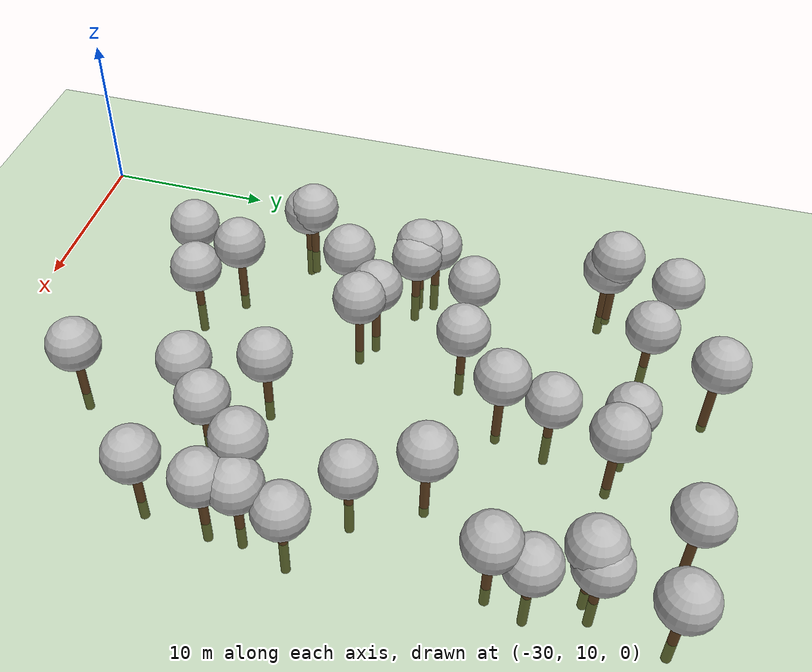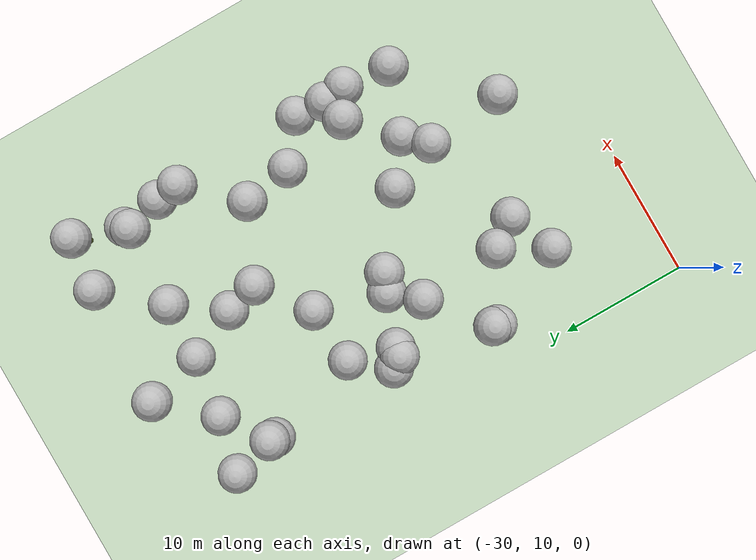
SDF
<sdf version="1.5">
 <world name="default">
  <model name="tree_simple492">
   <static>1</static>
   <link name="link">
    <pose>0 0 0.1 0 -0 0</pose>
    <collision name="collision_trunk">
     <pose>0 0 2 0 -0 0</pose>
     <geometry><cylinder><radius>0.25</radius><length>4</length></cylinder></geometry>
    </collision>
    <collision name="collision_treetop">
     <pose>0 0 5.2 0 -0 0</pose>
     <geometry><sphere><radius>1.5</radius></sphere></geometry>
    </collision>
    <visual name="trunk">
     <pose>0 0 2 0 -0 0</pose>
     <geometry><cylinder><radius>0.25</radius><length>4</length></cylinder></geometry>
     <material>
      <script>
       <uri>model://tree_simple/scripts</uri>
       <uri>model://tree_simple/materials/textures</uri>
       <name>TreeSimple/Trunk</name>
      </script>
     </material>
    </visual>
    <visual name="treetop">
     <pose>0 0 5.2 0 -0 0</pose>
     <geometry><sphere><radius>1.5</radius></sphere></geometry>
     <material>
      <script>
       <uri>model://tree_simple/scripts</uri>
       <uri>model://tree_simple/materials/textures</uri>
       <name>TreeSimple/Treetop</name>
      </script>
     </material>
    </visual>
   </link>
   <pose>-7.60604313382 27.1336498888 -0.777114410060258 0 -0 0</pose>
  </model>
  <model name="tree_simple483">
   <static>1</static>
   <link name="link">
    <pose>0 0 0.1 0 -0 0</pose>
    <collision name="collision_trunk">
     <pose>0 0 2 0 -0 0</pose>
     <geometry><cylinder><radius>0.25</radius><length>4</length></cylinder></geometry>
    </collision>
    <collision name="collision_treetop">
     <pose>0 0 5.2 0 -0 0</pose>
     <geometry><sphere><radius>1.5</radius></sphere></geometry>
    </collision>
    <visual name="trunk">
     <pose>0 0 2 0 -0 0</pose>
     <geometry><cylinder><radius>0.25</radius><length>4</length></cylinder></geometry>
     <material>
      <script>
       <uri>model://tree_simple/scripts</uri>
       <uri>model://tree_simple/materials/textures</uri>
       <name>TreeSimple/Trunk</name>
      </script>
     </material>
    </visual>
    <visual name="treetop">
     <pose>0 0 5.2 0 -0 0</pose>
     <geometry><sphere><radius>1.5</radius></sphere></geometry>
     <material>
      <script>
       <uri>model://tree_simple/scripts</uri>
       <uri>model://tree_simple/materials/textures</uri>
       <name>TreeSimple/Treetop</name>
      </script>
     </material>
    </visual>
   </link>
   <pose>-6.65162129766 44.7613363002 -1.5673599600233408 0 -0 0</pose>
  </model>
  <model name="tree_simple479">
   <static>1</static>
   <link name="link">
    <pose>0 0 0.1 0 -0 0</pose>
    <collision name="collision_trunk">
     <pose>0 0 2 0 -0 0</pose>
     <geometry><cylinder><radius>0.25</radius><length>4</length></cylinder></geometry>
    </collision>
    <collision name="collision_treetop">
     <pose>0 0 5.2 0 -0 0</pose>
     <geometry><sphere><radius>1.5</radius></sphere></geometry>
    </collision>
    <visual name="trunk">
     <pose>0 0 2 0 -0 0</pose>
     <geometry><cylinder><radius>0.25</radius><length>4</length></cylinder></geometry>
     <material>
      <script>
       <uri>model://tree_simple/scripts</uri>
       <uri>model://tree_simple/materials/textures</uri>
       <name>TreeSimple/Trunk</name>
      </script>
     </material>
    </visual>
    <visual name="treetop">
     <pose>0 0 5.2 0 -0 0</pose>
     <geometry><sphere><radius>1.5</radius></sphere></geometry>
     <material>
      <script>
       <uri>model://tree_simple/scripts</uri>
       <uri>model://tree_simple/materials/textures</uri>
       <name>TreeSimple/Treetop</name>
      </script>
     </material>
    </visual>
   </link>
   <pose>-12.2778199556 22.3020251283 -1.5209438534683652 0 -0 0</pose>
  </model>
  <model name="tree_simple466">
   <static>1</static>
   <link name="link">
    <pose>0 0 0.1 0 -0 0</pose>
    <collision name="collision_trunk">
     <pose>0 0 2 0 -0 0</pose>
     <geometry><cylinder><radius>0.25</radius><length>4</length></cylinder></geometry>
    </collision>
    <collision name="collision_treetop">
     <pose>0 0 5.2 0 -0 0</pose>
     <geometry><sphere><radius>1.5</radius></sphere></geometry>
    </collision>
    <visual name="trunk">
     <pose>0 0 2 0 -0 0</pose>
     <geometry><cylinder><radius>0.25</radius><length>4</length></cylinder></geometry>
     <material>
      <script>
       <uri>model://tree_simple/scripts</uri>
       <uri>model://tree_simple/materials/textures</uri>
       <name>TreeSimple/Trunk</name>
      </script>
     </material>
    </visual>
    <visual name="treetop">
     <pose>0 0 5.2 0 -0 0</pose>
     <geometry><sphere><radius>1.5</radius></sphere></geometry>
     <material>
      <script>
       <uri>model://tree_simple/scripts</uri>
       <uri>model://tree_simple/materials/textures</uri>
       <name>TreeSimple/Treetop</name>
      </script>
     </material>
    </visual>
   </link>
   <pose>-5.77986608036 22.173723886 -1.592125599168836 0 -0 0</pose>
  </model>
  <model name="tree_simple446">
   <static>1</static>
   <link name="link">
    <pose>0 0 0.1 0 -0 0</pose>
    <collision name="collision_trunk">
     <pose>0 0 2 0 -0 0</pose>
     <geometry><cylinder><radius>0.25</radius><length>4</length></cylinder></geometry>
    </collision>
    <collision name="collision_treetop">
     <pose>0 0 5.2 0 -0 0</pose>
     <geometry><sphere><radius>1.5</radius></sphere></geometry>
    </collision>
    <visual name="trunk">
     <pose>0 0 2 0 -0 0</pose>
     <geometry><cylinder><radius>0.25</radius><length>4</length></cylinder></geometry>
     <material>
      <script>
       <uri>model://tree_simple/scripts</uri>
       <uri>model://tree_simple/materials/textures</uri>
       <name>TreeSimple/Trunk</name>
      </script>
     </material>
    </visual>
    <visual name="treetop">
     <pose>0 0 5.2 0 -0 0</pose>
     <geometry><sphere><radius>1.5</radius></sphere></geometry>
     <material>
      <script>
       <uri>model://tree_simple/scripts</uri>
       <uri>model://tree_simple/materials/textures</uri>
       <name>TreeSimple/Treetop</name>
      </script>
     </material>
    </visual>
   </link>
   <pose>-14.8873591434 38.8088683427 -0.8229034105577706 0 -0 0</pose>
  </model>
  <model name="tree_simple441">
   <static>1</static>
   <link name="link">
    <pose>0 0 0.1 0 -0 0</pose>
    <collision name="collision_trunk">
     <pose>0 0 2 0 -0 0</pose>
     <geometry><cylinder><radius>0.25</radius><length>4</length></cylinder></geometry>
    </collision>
    <collision name="collision_treetop">
     <pose>0 0 5.2 0 -0 0</pose>
     <geometry><sphere><radius>1.5</radius></sphere></geometry>
    </collision>
    <visual name="trunk">
     <pose>0 0 2 0 -0 0</pose>
     <geometry><cylinder><radius>0.25</radius><length>4</length></cylinder></geometry>
     <material>
      <script>
       <uri>model://tree_simple/scripts</uri>
       <uri>model://tree_simple/materials/textures</uri>
       <name>TreeSimple/Trunk</name>
      </script>
     </material>
    </visual>
    <visual name="treetop">
     <pose>0 0 5.2 0 -0 0</pose>
     <geometry><sphere><radius>1.5</radius></sphere></geometry>
     <material>
      <script>
       <uri>model://tree_simple/scripts</uri>
       <uri>model://tree_simple/materials/textures</uri>
       <name>TreeSimple/Treetop</name>
      </script>
     </material>
    </visual>
   </link>
   <pose>-25.4258718868 33.0017159702 -2.269556547559087 0 -0 0</pose>
  </model>
  <model name="tree_simple436">
   <static>1</static>
   <link name="link">
    <pose>0 0 0.1 0 -0 0</pose>
    <collision name="collision_trunk">
     <pose>0 0 2 0 -0 0</pose>
     <geometry><cylinder><radius>0.25</radius><length>4</length></cylinder></geometry>
    </collision>
    <collision name="collision_treetop">
     <pose>0 0 5.2 0 -0 0</pose>
     <geometry><sphere><radius>1.5</radius></sphere></geometry>
    </collision>
    <visual name="trunk">
     <pose>0 0 2 0 -0 0</pose>
     <geometry><cylinder><radius>0.25</radius><length>4</length></cylinder></geometry>
     <material>
      <script>
       <uri>model://tree_simple/scripts</uri>
       <uri>model://tree_simple/materials/textures</uri>
       <name>TreeSimple/Trunk</name>
      </script>
     </material>
    </visual>
    <visual name="treetop">
     <pose>0 0 5.2 0 -0 0</pose>
     <geometry><sphere><radius>1.5</radius></sphere></geometry>
     <material>
      <script>
       <uri>model://tree_simple/scripts</uri>
       <uri>model://tree_simple/materials/textures</uri>
       <name>TreeSimple/Treetop</name>
      </script>
     </material>
    </visual>
   </link>
   <pose>-12.9773602363 44.9895309953 -0.9451846145048766 0 -0 0</pose>
  </model>
  <model name="tree_simple425">
   <static>1</static>
   <link name="link">
    <pose>0 0 0.1 0 -0 0</pose>
    <collision name="collision_trunk">
     <pose>0 0 2 0 -0 0</pose>
     <geometry><cylinder><radius>0.25</radius><length>4</length></cylinder></geometry>
    </collision>
    <collision name="collision_treetop">
     <pose>0 0 5.2 0 -0 0</pose>
     <geometry><sphere><radius>1.5</radius></sphere></geometry>
    </collision>
    <visual name="trunk">
     <pose>0 0 2 0 -0 0</pose>
     <geometry><cylinder><radius>0.25</radius><length>4</length></cylinder></geometry>
     <material>
      <script>
       <uri>model://tree_simple/scripts</uri>
       <uri>model://tree_simple/materials/textures</uri>
       <name>TreeSimple/Trunk</name>
      </script>
     </material>
    </visual>
    <visual name="treetop">
     <pose>0 0 5.2 0 -0 0</pose>
     <geometry><sphere><radius>1.5</radius></sphere></geometry>
     <material>
      <script>
       <uri>model://tree_simple/scripts</uri>
       <uri>model://tree_simple/materials/textures</uri>
       <name>TreeSimple/Treetop</name>
      </script>
     </material>
    </visual>
   </link>
   <pose>-9.294152574 36.1907172759 -0.8964126762535747 0 -0 0</pose>
  </model>
  <model name="tree_simple409">
   <static>1</static>
   <link name="link">
    <pose>0 0 0.1 0 -0 0</pose>
    <collision name="collision_trunk">
     <pose>0 0 2 0 -0 0</pose>
     <geometry><cylinder><radius>0.25</radius><length>4</length></cylinder></geometry>
    </collision>
    <collision name="collision_treetop">
     <pose>0 0 5.2 0 -0 0</pose>
     <geometry><sphere><radius>1.5</radius></sphere></geometry>
    </collision>
    <visual name="trunk">
     <pose>0 0 2 0 -0 0</pose>
     <geometry><cylinder><radius>0.25</radius><length>4</length></cylinder></geometry>
     <material>
      <script>
       <uri>model://tree_simple/scripts</uri>
       <uri>model://tree_simple/materials/textures</uri>
       <name>TreeSimple/Trunk</name>
      </script>
     </material>
    </visual>
    <visual name="treetop">
     <pose>0 0 5.2 0 -0 0</pose>
     <geometry><sphere><radius>1.5</radius></sphere></geometry>
     <material>
      <script>
       <uri>model://tree_simple/scripts</uri>
       <uri>model://tree_simple/materials/textures</uri>
       <name>TreeSimple/Treetop</name>
      </script>
     </material>
    </visual>
   </link>
   <pose>-23.2045481925 35.7189479207 -2.498719308465116 0 -0 0</pose>
  </model>
  <model name="tree_simple398">
   <static>1</static>
   <link name="link">
    <pose>0 0 0.1 0 -0 0</pose>
    <collision name="collision_trunk">
     <pose>0 0 2 0 -0 0</pose>
     <geometry><cylinder><radius>0.25</radius><length>4</length></cylinder></geometry>
    </collision>
    <collision name="collision_treetop">
     <pose>0 0 5.2 0 -0 0</pose>
     <geometry><sphere><radius>1.5</radius></sphere></geometry>
    </collision>
    <visual name="trunk">
     <pose>0 0 2 0 -0 0</pose>
     <geometry><cylinder><radius>0.25</radius><length>4</length></cylinder></geometry>
     <material>
      <script>
       <uri>model://tree_simple/scripts</uri>
       <uri>model://tree_simple/materials/textures</uri>
       <name>TreeSimple/Trunk</name>
      </script>
     </material>
    </visual>
    <visual name="treetop">
     <pose>0 0 5.2 0 -0 0</pose>
     <geometry><sphere><radius>1.5</radius></sphere></geometry>
     <material>
      <script>
       <uri>model://tree_simple/scripts</uri>
       <uri>model://tree_simple/materials/textures</uri>
       <name>TreeSimple/Treetop</name>
      </script>
     </material>
    </visual>
   </link>
   <pose>-5.63129043723 27.5985943182 -1.882284944733629 0 -0 0</pose>
  </model>
  <model name="tree_simple359">
   <static>1</static>
   <link name="link">
    <pose>0 0 0.1 0 -0 0</pose>
    <collision name="collision_trunk">
     <pose>0 0 2 0 -0 0</pose>
     <geometry><cylinder><radius>0.25</radius><length>4</length></cylinder></geometry>
    </collision>
    <collision name="collision_treetop">
     <pose>0 0 5.2 0 -0 0</pose>
     <geometry><sphere><radius>1.5</radius></sphere></geometry>
    </collision>
    <visual name="trunk">
     <pose>0 0 2 0 -0 0</pose>
     <geometry><cylinder><radius>0.25</radius><length>4</length></cylinder></geometry>
     <material>
      <script>
       <uri>model://tree_simple/scripts</uri>
       <uri>model://tree_simple/materials/textures</uri>
       <name>TreeSimple/Trunk</name>
      </script>
     </material>
    </visual>
    <visual name="treetop">
     <pose>0 0 5.2 0 -0 0</pose>
     <geometry><sphere><radius>1.5</radius></sphere></geometry>
     <material>
      <script>
       <uri>model://tree_simple/scripts</uri>
       <uri>model://tree_simple/materials/textures</uri>
       <name>TreeSimple/Treetop</name>
      </script>
     </material>
    </visual>
   </link>
   <pose>-20.2372130322 30.6626507403 -1.4045572480643975 0 -0 0</pose>
  </model>
  <model name="tree_simple353">
   <static>1</static>
   <link name="link">
    <pose>0 0 0.1 0 -0 0</pose>
    <collision name="collision_trunk">
     <pose>0 0 2 0 -0 0</pose>
     <geometry><cylinder><radius>0.25</radius><length>4</length></cylinder></geometry>
    </collision>
    <collision name="collision_treetop">
     <pose>0 0 5.2 0 -0 0</pose>
     <geometry><sphere><radius>1.5</radius></sphere></geometry>
    </collision>
    <visual name="trunk">
     <pose>0 0 2 0 -0 0</pose>
     <geometry><cylinder><radius>0.25</radius><length>4</length></cylinder></geometry>
     <material>
      <script>
       <uri>model://tree_simple/scripts</uri>
       <uri>model://tree_simple/materials/textures</uri>
       <name>TreeSimple/Trunk</name>
      </script>
     </material>
    </visual>
    <visual name="treetop">
     <pose>0 0 5.2 0 -0 0</pose>
     <geometry><sphere><radius>1.5</radius></sphere></geometry>
     <material>
      <script>
       <uri>model://tree_simple/scripts</uri>
       <uri>model://tree_simple/materials/textures</uri>
       <name>TreeSimple/Treetop</name>
      </script>
     </material>
    </visual>
   </link>
   <pose>-8.45318639894 32.4449291469 -2.5970196484781063 0 -0 0</pose>
  </model>
  <model name="tree_simple343">
   <static>1</static>
   <link name="link">
    <pose>0 0 0.1 0 -0 0</pose>
    <collision name="collision_trunk">
     <pose>0 0 2 0 -0 0</pose>
     <geometry><cylinder><radius>0.25</radius><length>4</length></cylinder></geometry>
    </collision>
    <collision name="collision_treetop">
     <pose>0 0 5.2 0 -0 0</pose>
     <geometry><sphere><radius>1.5</radius></sphere></geometry>
    </collision>
    <visual name="trunk">
     <pose>0 0 2 0 -0 0</pose>
     <geometry><cylinder><radius>0.25</radius><length>4</length></cylinder></geometry>
     <material>
      <script>
       <uri>model://tree_simple/scripts</uri>
       <uri>model://tree_simple/materials/textures</uri>
       <name>TreeSimple/Trunk</name>
      </script>
     </material>
    </visual>
    <visual name="treetop">
     <pose>0 0 5.2 0 -0 0</pose>
     <geometry><sphere><radius>1.5</radius></sphere></geometry>
     <material>
      <script>
       <uri>model://tree_simple/scripts</uri>
       <uri>model://tree_simple/materials/textures</uri>
       <name>TreeSimple/Treetop</name>
      </script>
     </material>
    </visual>
   </link>
   <pose>-17.2958932822 45.7138384605 -3.948478030348825 0 -0 0</pose>
  </model>
  <model name="tree_simple342">
   <static>1</static>
   <link name="link">
    <pose>0 0 0.1 0 -0 0</pose>
    <collision name="collision_trunk">
     <pose>0 0 2 0 -0 0</pose>
     <geometry><cylinder><radius>0.25</radius><length>4</length></cylinder></geometry>
    </collision>
    <collision name="collision_treetop">
     <pose>0 0 5.2 0 -0 0</pose>
     <geometry><sphere><radius>1.5</radius></sphere></geometry>
    </collision>
    <visual name="trunk">
     <pose>0 0 2 0 -0 0</pose>
     <geometry><cylinder><radius>0.25</radius><length>4</length></cylinder></geometry>
     <material>
      <script>
       <uri>model://tree_simple/scripts</uri>
       <uri>model://tree_simple/materials/textures</uri>
       <name>TreeSimple/Trunk</name>
      </script>
     </material>
    </visual>
    <visual name="treetop">
     <pose>0 0 5.2 0 -0 0</pose>
     <geometry><sphere><radius>1.5</radius></sphere></geometry>
     <material>
      <script>
       <uri>model://tree_simple/scripts</uri>
       <uri>model://tree_simple/materials/textures</uri>
       <name>TreeSimple/Treetop</name>
      </script>
     </material>
    </visual>
   </link>
   <pose>-22.0369501139 46.0033918911 -2.2910733252250504 0 -0 0</pose>
  </model>
  <model name="tree_simple310">
   <static>1</static>
   <link name="link">
    <pose>0 0 0.1 0 -0 0</pose>
    <collision name="collision_trunk">
     <pose>0 0 2 0 -0 0</pose>
     <geometry><cylinder><radius>0.25</radius><length>4</length></cylinder></geometry>
    </collision>
    <collision name="collision_treetop">
     <pose>0 0 5.2 0 -0 0</pose>
     <geometry><sphere><radius>1.5</radius></sphere></geometry>
    </collision>
    <visual name="trunk">
     <pose>0 0 2 0 -0 0</pose>
     <geometry><cylinder><radius>0.25</radius><length>4</length></cylinder></geometry>
     <material>
      <script>
       <uri>model://tree_simple/scripts</uri>
       <uri>model://tree_simple/materials/textures</uri>
       <name>TreeSimple/Trunk</name>
      </script>
     </material>
    </visual>
    <visual name="treetop">
     <pose>0 0 5.2 0 -0 0</pose>
     <geometry><sphere><radius>1.5</radius></sphere></geometry>
     <material>
      <script>
       <uri>model://tree_simple/scripts</uri>
       <uri>model://tree_simple/materials/textures</uri>
       <name>TreeSimple/Treetop</name>
      </script>
     </material>
    </visual>
   </link>
   <pose>-24.1249967054 32.1060106323 -2.198553968869226 0 -0 0</pose>
  </model>
  <model name="tree_simple307">
   <static>1</static>
   <link name="link">
    <pose>0 0 0.1 0 -0 0</pose>
    <collision name="collision_trunk">
     <pose>0 0 2 0 -0 0</pose>
     <geometry><cylinder><radius>0.25</radius><length>4</length></cylinder></geometry>
    </collision>
    <collision name="collision_treetop">
     <pose>0 0 5.2 0 -0 0</pose>
     <geometry><sphere><radius>1.5</radius></sphere></geometry>
    </collision>
    <visual name="trunk">
     <pose>0 0 2 0 -0 0</pose>
     <geometry><cylinder><radius>0.25</radius><length>4</length></cylinder></geometry>
     <material>
      <script>
       <uri>model://tree_simple/scripts</uri>
       <uri>model://tree_simple/materials/textures</uri>
       <name>TreeSimple/Trunk</name>
      </script>
     </material>
    </visual>
    <visual name="treetop">
     <pose>0 0 5.2 0 -0 0</pose>
     <geometry><sphere><radius>1.5</radius></sphere></geometry>
     <material>
      <script>
       <uri>model://tree_simple/scripts</uri>
       <uri>model://tree_simple/materials/textures</uri>
       <name>TreeSimple/Treetop</name>
      </script>
     </material>
    </visual>
   </link>
   <pose>-25.3992623196 43.1282745175 -1.5799735207614776 0 -0 0</pose>
  </model>
  <model name="tree_simple271">
   <static>1</static>
   <link name="link">
    <pose>0 0 0.1 0 -0 0</pose>
    <collision name="collision_trunk">
     <pose>0 0 2 0 -0 0</pose>
     <geometry><cylinder><radius>0.25</radius><length>4</length></cylinder></geometry>
    </collision>
    <collision name="collision_treetop">
     <pose>0 0 5.2 0 -0 0</pose>
     <geometry><sphere><radius>1.5</radius></sphere></geometry>
    </collision>
    <visual name="trunk">
     <pose>0 0 2 0 -0 0</pose>
     <geometry><cylinder><radius>0.25</radius><length>4</length></cylinder></geometry>
     <material>
      <script>
       <uri>model://tree_simple/scripts</uri>
       <uri>model://tree_simple/materials/textures</uri>
       <name>TreeSimple/Trunk</name>
      </script>
     </material>
    </visual>
    <visual name="treetop">
     <pose>0 0 5.2 0 -0 0</pose>
     <geometry><sphere><radius>1.5</radius></sphere></geometry>
     <material>
      <script>
       <uri>model://tree_simple/scripts</uri>
       <uri>model://tree_simple/materials/textures</uri>
       <name>TreeSimple/Treetop</name>
      </script>
     </material>
    </visual>
   </link>
   <pose>-18.5426783436 49.4999190652 -0.6315812404913141 0 -0 0</pose>
  </model>
  <model name="tree_simple251">
   <static>1</static>
   <link name="link">
    <pose>0 0 0.1 0 -0 0</pose>
    <collision name="collision_trunk">
     <pose>0 0 2 0 -0 0</pose>
     <geometry><cylinder><radius>0.25</radius><length>4</length></cylinder></geometry>
    </collision>
    <collision name="collision_treetop">
     <pose>0 0 5.2 0 -0 0</pose>
     <geometry><sphere><radius>1.5</radius></sphere></geometry>
    </collision>
    <visual name="trunk">
     <pose>0 0 2 0 -0 0</pose>
     <geometry><cylinder><radius>0.25</radius><length>4</length></cylinder></geometry>
     <material>
      <script>
       <uri>model://tree_simple/scripts</uri>
       <uri>model://tree_simple/materials/textures</uri>
       <name>TreeSimple/Trunk</name>
      </script>
     </material>
    </visual>
    <visual name="treetop">
     <pose>0 0 5.2 0 -0 0</pose>
     <geometry><sphere><radius>1.5</radius></sphere></geometry>
     <material>
      <script>
       <uri>model://tree_simple/scripts</uri>
       <uri>model://tree_simple/materials/textures</uri>
       <name>TreeSimple/Treetop</name>
      </script>
     </material>
    </visual>
   </link>
   <pose>-19.9479400909 19.7976665809 -2.383186906810059 0 -0 0</pose>
  </model>
  <model name="tree_simple248">
   <static>1</static>
   <link name="link">
    <pose>0 0 0.1 0 -0 0</pose>
    <collision name="collision_trunk">
     <pose>0 0 2 0 -0 0</pose>
     <geometry><cylinder><radius>0.25</radius><length>4</length></cylinder></geometry>
    </collision>
    <collision name="collision_treetop">
     <pose>0 0 5.2 0 -0 0</pose>
     <geometry><sphere><radius>1.5</radius></sphere></geometry>
    </collision>
    <visual name="trunk">
     <pose>0 0 2 0 -0 0</pose>
     <geometry><cylinder><radius>0.25</radius><length>4</length></cylinder></geometry>
     <material>
      <script>
       <uri>model://tree_simple/scripts</uri>
       <uri>model://tree_simple/materials/textures</uri>
       <name>TreeSimple/Trunk</name>
      </script>
     </material>
    </visual>
    <visual name="treetop">
     <pose>0 0 5.2 0 -0 0</pose>
     <geometry><sphere><radius>1.5</radius></sphere></geometry>
     <material>
      <script>
       <uri>model://tree_simple/scripts</uri>
       <uri>model://tree_simple/materials/textures</uri>
       <name>TreeSimple/Treetop</name>
      </script>
     </material>
    </visual>
   </link>
   <pose>-9.31615496508 49.2286778513 -1.1281525146404503 0 -0 0</pose>
  </model>
  <model name="tree_simple232">
   <static>1</static>
   <link name="link">
    <pose>0 0 0.1 0 -0 0</pose>
    <collision name="collision_trunk">
     <pose>0 0 2 0 -0 0</pose>
     <geometry><cylinder><radius>0.25</radius><length>4</length></cylinder></geometry>
    </collision>
    <collision name="collision_treetop">
     <pose>0 0 5.2 0 -0 0</pose>
     <geometry><sphere><radius>1.5</radius></sphere></geometry>
    </collision>
    <visual name="trunk">
     <pose>0 0 2 0 -0 0</pose>
     <geometry><cylinder><radius>0.25</radius><length>4</length></cylinder></geometry>
     <material>
      <script>
       <uri>model://tree_simple/scripts</uri>
       <uri>model://tree_simple/materials/textures</uri>
       <name>TreeSimple/Trunk</name>
      </script>
     </material>
    </visual>
    <visual name="treetop">
     <pose>0 0 5.2 0 -0 0</pose>
     <geometry><sphere><radius>1.5</radius></sphere></geometry>
     <material>
      <script>
       <uri>model://tree_simple/scripts</uri>
       <uri>model://tree_simple/materials/textures</uri>
       <name>TreeSimple/Treetop</name>
      </script>
     </material>
    </visual>
   </link>
   <pose>-11.6357803634 16.236207717 -1.4807460292759995 0 -0 0</pose>
  </model>
  <model name="tree_simple224">
   <static>1</static>
   <link name="link">
    <pose>0 0 0.1 0 -0 0</pose>
    <collision name="collision_trunk">
     <pose>0 0 2 0 -0 0</pose>
     <geometry><cylinder><radius>0.25</radius><length>4</length></cylinder></geometry>
    </collision>
    <collision name="collision_treetop">
     <pose>0 0 5.2 0 -0 0</pose>
     <geometry><sphere><radius>1.5</radius></sphere></geometry>
    </collision>
    <visual name="trunk">
     <pose>0 0 2 0 -0 0</pose>
     <geometry><cylinder><radius>0.25</radius><length>4</length></cylinder></geometry>
     <material>
      <script>
       <uri>model://tree_simple/scripts</uri>
       <uri>model://tree_simple/materials/textures</uri>
       <name>TreeSimple/Trunk</name>
      </script>
     </material>
    </visual>
    <visual name="treetop">
     <pose>0 0 5.2 0 -0 0</pose>
     <geometry><sphere><radius>1.5</radius></sphere></geometry>
     <material>
      <script>
       <uri>model://tree_simple/scripts</uri>
       <uri>model://tree_simple/materials/textures</uri>
       <name>TreeSimple/Treetop</name>
      </script>
     </material>
    </visual>
   </link>
   <pose>-25.303745436 43.465040084 -0.5768393167187675 0 -0 0</pose>
  </model>
  <model name="tree_simple213">
   <static>1</static>
   <link name="link">
    <pose>0 0 0.1 0 -0 0</pose>
    <collision name="collision_trunk">
     <pose>0 0 2 0 -0 0</pose>
     <geometry><cylinder><radius>0.25</radius><length>4</length></cylinder></geometry>
    </collision>
    <collision name="collision_treetop">
     <pose>0 0 5.2 0 -0 0</pose>
     <geometry><sphere><radius>1.5</radius></sphere></geometry>
    </collision>
    <visual name="trunk">
     <pose>0 0 2 0 -0 0</pose>
     <geometry><cylinder><radius>0.25</radius><length>4</length></cylinder></geometry>
     <material>
      <script>
       <uri>model://tree_simple/scripts</uri>
       <uri>model://tree_simple/materials/textures</uri>
       <name>TreeSimple/Trunk</name>
      </script>
     </material>
    </visual>
    <visual name="treetop">
     <pose>0 0 5.2 0 -0 0</pose>
     <geometry><sphere><radius>1.5</radius></sphere></geometry>
     <material>
      <script>
       <uri>model://tree_simple/scripts</uri>
       <uri>model://tree_simple/materials/textures</uri>
       <name>TreeSimple/Treetop</name>
      </script>
     </material>
    </visual>
   </link>
   <pose>-6.21217405129 45.1783482454 -2.253806931240573 0 -0 0</pose>
  </model>
  <model name="tree_simple186">
   <static>1</static>
   <link name="link">
    <pose>0 0 0.1 0 -0 0</pose>
    <collision name="collision_trunk">
     <pose>0 0 2 0 -0 0</pose>
     <geometry><cylinder><radius>0.25</radius><length>4</length></cylinder></geometry>
    </collision>
    <collision name="collision_treetop">
     <pose>0 0 5.2 0 -0 0</pose>
     <geometry><sphere><radius>1.5</radius></sphere></geometry>
    </collision>
    <visual name="trunk">
     <pose>0 0 2 0 -0 0</pose>
     <geometry><cylinder><radius>0.25</radius><length>4</length></cylinder></geometry>
     <material>
      <script>
       <uri>model://tree_simple/scripts</uri>
       <uri>model://tree_simple/materials/textures</uri>
       <name>TreeSimple/Trunk</name>
      </script>
     </material>
    </visual>
    <visual name="treetop">
     <pose>0 0 5.2 0 -0 0</pose>
     <geometry><sphere><radius>1.5</radius></sphere></geometry>
     <material>
      <script>
       <uri>model://tree_simple/scripts</uri>
       <uri>model://tree_simple/materials/textures</uri>
       <name>TreeSimple/Treetop</name>
      </script>
     </material>
    </visual>
   </link>
   <pose>-26.4394079644 24.666728782 -2.236990173563657 0 -0 0</pose>
  </model>
  <model name="tree_simple183">
   <static>1</static>
   <link name="link">
    <pose>0 0 0.1 0 -0 0</pose>
    <collision name="collision_trunk">
     <pose>0 0 2 0 -0 0</pose>
     <geometry><cylinder><radius>0.25</radius><length>4</length></cylinder></geometry>
    </collision>
    <collision name="collision_treetop">
     <pose>0 0 5.2 0 -0 0</pose>
     <geometry><sphere><radius>1.5</radius></sphere></geometry>
    </collision>
    <visual name="trunk">
     <pose>0 0 2 0 -0 0</pose>
     <geometry><cylinder><radius>0.25</radius><length>4</length></cylinder></geometry>
     <material>
      <script>
       <uri>model://tree_simple/scripts</uri>
       <uri>model://tree_simple/materials/textures</uri>
       <name>TreeSimple/Trunk</name>
      </script>
     </material>
    </visual>
    <visual name="treetop">
     <pose>0 0 5.2 0 -0 0</pose>
     <geometry><sphere><radius>1.5</radius></sphere></geometry>
     <material>
      <script>
       <uri>model://tree_simple/scripts</uri>
       <uri>model://tree_simple/materials/textures</uri>
       <name>TreeSimple/Treetop</name>
      </script>
     </material>
    </visual>
   </link>
   <pose>-24.8051767245 32.1734283562 -1.8307573107293464 0 -0 0</pose>
  </model>
  <model name="tree_simple174">
   <static>1</static>
   <link name="link">
    <pose>0 0 0.1 0 -0 0</pose>
    <collision name="collision_trunk">
     <pose>0 0 2 0 -0 0</pose>
     <geometry><cylinder><radius>0.25</radius><length>4</length></cylinder></geometry>
    </collision>
    <collision name="collision_treetop">
     <pose>0 0 5.2 0 -0 0</pose>
     <geometry><sphere><radius>1.5</radius></sphere></geometry>
    </collision>
    <visual name="trunk">
     <pose>0 0 2 0 -0 0</pose>
     <geometry><cylinder><radius>0.25</radius><length>4</length></cylinder></geometry>
     <material>
      <script>
       <uri>model://tree_simple/scripts</uri>
       <uri>model://tree_simple/materials/textures</uri>
       <name>TreeSimple/Trunk</name>
      </script>
     </material>
    </visual>
    <visual name="treetop">
     <pose>0 0 5.2 0 -0 0</pose>
     <geometry><sphere><radius>1.5</radius></sphere></geometry>
     <material>
      <script>
       <uri>model://tree_simple/scripts</uri>
       <uri>model://tree_simple/materials/textures</uri>
       <name>TreeSimple/Treetop</name>
      </script>
     </material>
    </visual>
   </link>
   <pose>-26.363349587 25.0273342245 -1.9137421610099605 0 -0 0</pose>
  </model>
  <model name="tree_simple161">
   <static>1</static>
   <link name="link">
    <pose>0 0 0.1 0 -0 0</pose>
    <collision name="collision_trunk">
     <pose>0 0 2 0 -0 0</pose>
     <geometry><cylinder><radius>0.25</radius><length>4</length></cylinder></geometry>
    </collision>
    <collision name="collision_treetop">
     <pose>0 0 5.2 0 -0 0</pose>
     <geometry><sphere><radius>1.5</radius></sphere></geometry>
    </collision>
    <visual name="trunk">
     <pose>0 0 2 0 -0 0</pose>
     <geometry><cylinder><radius>0.25</radius><length>4</length></cylinder></geometry>
     <material>
      <script>
       <uri>model://tree_simple/scripts</uri>
       <uri>model://tree_simple/materials/textures</uri>
       <name>TreeSimple/Trunk</name>
      </script>
     </material>
    </visual>
    <visual name="treetop">
     <pose>0 0 5.2 0 -0 0</pose>
     <geometry><sphere><radius>1.5</radius></sphere></geometry>
     <material>
      <script>
       <uri>model://tree_simple/scripts</uri>
       <uri>model://tree_simple/materials/textures</uri>
       <name>TreeSimple/Treetop</name>
      </script>
     </material>
    </visual>
   </link>
   <pose>-5.06082538739 48.9463602033 -1.7512031336850848 0 -0 0</pose>
  </model>
  <model name="tree_simple134">
   <static>1</static>
   <link name="link">
    <pose>0 0 0.1 0 -0 0</pose>
    <collision name="collision_trunk">
     <pose>0 0 2 0 -0 0</pose>
     <geometry><cylinder><radius>0.25</radius><length>4</length></cylinder></geometry>
    </collision>
    <collision name="collision_treetop">
     <pose>0 0 5.2 0 -0 0</pose>
     <geometry><sphere><radius>1.5</radius></sphere></geometry>
    </collision>
    <visual name="trunk">
     <pose>0 0 2 0 -0 0</pose>
     <geometry><cylinder><radius>0.25</radius><length>4</length></cylinder></geometry>
     <material>
      <script>
       <uri>model://tree_simple/scripts</uri>
       <uri>model://tree_simple/materials/textures</uri>
       <name>TreeSimple/Trunk</name>
      </script>
     </material>
    </visual>
    <visual name="treetop">
     <pose>0 0 5.2 0 -0 0</pose>
     <geometry><sphere><radius>1.5</radius></sphere></geometry>
     <material>
      <script>
       <uri>model://tree_simple/scripts</uri>
       <uri>model://tree_simple/materials/textures</uri>
       <name>TreeSimple/Treetop</name>
      </script>
     </material>
    </visual>
   </link>
   <pose>-15.5112177362 41.52540577 -2.4921730535616224 0 -0 0</pose>
  </model>
  <model name="tree_simple116">
   <static>1</static>
   <link name="link">
    <pose>0 0 0.1 0 -0 0</pose>
    <collision name="collision_trunk">
     <pose>0 0 2 0 -0 0</pose>
     <geometry><cylinder><radius>0.25</radius><length>4</length></cylinder></geometry>
    </collision>
    <collision name="collision_treetop">
     <pose>0 0 5.2 0 -0 0</pose>
     <geometry><sphere><radius>1.5</radius></sphere></geometry>
    </collision>
    <visual name="trunk">
     <pose>0 0 2 0 -0 0</pose>
     <geometry><cylinder><radius>0.25</radius><length>4</length></cylinder></geometry>
     <material>
      <script>
       <uri>model://tree_simple/scripts</uri>
       <uri>model://tree_simple/materials/textures</uri>
       <name>TreeSimple/Trunk</name>
      </script>
     </material>
    </visual>
    <visual name="treetop">
     <pose>0 0 5.2 0 -0 0</pose>
     <geometry><sphere><radius>1.5</radius></sphere></geometry>
     <material>
      <script>
       <uri>model://tree_simple/scripts</uri>
       <uri>model://tree_simple/materials/textures</uri>
       <name>TreeSimple/Treetop</name>
      </script>
     </material>
    </visual>
   </link>
   <pose>-18.6791358841 36.0330135093 -1.9310392221782868 0 -0 0</pose>
  </model>
  <model name="tree_simple111">
   <static>1</static>
   <link name="link">
    <pose>0 0 0.1 0 -0 0</pose>
    <collision name="collision_trunk">
     <pose>0 0 2 0 -0 0</pose>
     <geometry><cylinder><radius>0.25</radius><length>4</length></cylinder></geometry>
    </collision>
    <collision name="collision_treetop">
     <pose>0 0 5.2 0 -0 0</pose>
     <geometry><sphere><radius>1.5</radius></sphere></geometry>
    </collision>
    <visual name="trunk">
     <pose>0 0 2 0 -0 0</pose>
     <geometry><cylinder><radius>0.25</radius><length>4</length></cylinder></geometry>
     <material>
      <script>
       <uri>model://tree_simple/scripts</uri>
       <uri>model://tree_simple/materials/textures</uri>
       <name>TreeSimple/Trunk</name>
      </script>
     </material>
    </visual>
    <visual name="treetop">
     <pose>0 0 5.2 0 -0 0</pose>
     <geometry><sphere><radius>1.5</radius></sphere></geometry>
     <material>
      <script>
       <uri>model://tree_simple/scripts</uri>
       <uri>model://tree_simple/materials/textures</uri>
       <name>TreeSimple/Treetop</name>
      </script>
     </material>
    </visual>
   </link>
   <pose>-26.4353630298 47.1515170398 -2.7280521529528023 0 -0 0</pose>
  </model>
  <model name="tree_simple110">
   <static>1</static>
   <link name="link">
    <pose>0 0 0.1 0 -0 0</pose>
    <collision name="collision_trunk">
     <pose>0 0 2 0 -0 0</pose>
     <geometry><cylinder><radius>0.25</radius><length>4</length></cylinder></geometry>
    </collision>
    <collision name="collision_treetop">
     <pose>0 0 5.2 0 -0 0</pose>
     <geometry><sphere><radius>1.5</radius></sphere></geometry>
    </collision>
    <visual name="trunk">
     <pose>0 0 2 0 -0 0</pose>
     <geometry><cylinder><radius>0.25</radius><length>4</length></cylinder></geometry>
     <material>
      <script>
       <uri>model://tree_simple/scripts</uri>
       <uri>model://tree_simple/materials/textures</uri>
       <name>TreeSimple/Trunk</name>
      </script>
     </material>
    </visual>
    <visual name="treetop">
     <pose>0 0 5.2 0 -0 0</pose>
     <geometry><sphere><radius>1.5</radius></sphere></geometry>
     <material>
      <script>
       <uri>model://tree_simple/scripts</uri>
       <uri>model://tree_simple/materials/textures</uri>
       <name>TreeSimple/Treetop</name>
      </script>
     </material>
    </visual>
   </link>
   <pose>-5.41034027226 25.8326134986 -1.6457281105555273 0 -0 0</pose>
  </model>
  <model name="tree_simple104">
   <static>1</static>
   <link name="link">
    <pose>0 0 0.1 0 -0 0</pose>
    <collision name="collision_trunk">
     <pose>0 0 2 0 -0 0</pose>
     <geometry><cylinder><radius>0.25</radius><length>4</length></cylinder></geometry>
    </collision>
    <collision name="collision_treetop">
     <pose>0 0 5.2 0 -0 0</pose>
     <geometry><sphere><radius>1.5</radius></sphere></geometry>
    </collision>
    <visual name="trunk">
     <pose>0 0 2 0 -0 0</pose>
     <geometry><cylinder><radius>0.25</radius><length>4</length></cylinder></geometry>
     <material>
      <script>
       <uri>model://tree_simple/scripts</uri>
       <uri>model://tree_simple/materials/textures</uri>
       <name>TreeSimple/Trunk</name>
      </script>
     </material>
    </visual>
    <visual name="treetop">
     <pose>0 0 5.2 0 -0 0</pose>
     <geometry><sphere><radius>1.5</radius></sphere></geometry>
     <material>
      <script>
       <uri>model://tree_simple/scripts</uri>
       <uri>model://tree_simple/materials/textures</uri>
       <name>TreeSimple/Treetop</name>
      </script>
     </material>
    </visual>
   </link>
   <pose>-21.9670509501 28.5770993943 -0.7133432548907686 0 -0 0</pose>
  </model>
  <model name="tree_simple103">
   <static>1</static>
   <link name="link">
    <pose>0 0 0.1 0 -0 0</pose>
    <collision name="collision_trunk">
     <pose>0 0 2 0 -0 0</pose>
     <geometry><cylinder><radius>0.25</radius><length>4</length></cylinder></geometry>
    </collision>
    <collision name="collision_treetop">
     <pose>0 0 5.2 0 -0 0</pose>
     <geometry><sphere><radius>1.5</radius></sphere></geometry>
    </collision>
    <visual name="trunk">
     <pose>0 0 2 0 -0 0</pose>
     <geometry><cylinder><radius>0.25</radius><length>4</length></cylinder></geometry>
     <material>
      <script>
       <uri>model://tree_simple/scripts</uri>
       <uri>model://tree_simple/materials/textures</uri>
       <name>TreeSimple/Trunk</name>
      </script>
     </material>
    </visual>
    <visual name="treetop">
     <pose>0 0 5.2 0 -0 0</pose>
     <geometry><sphere><radius>1.5</radius></sphere></geometry>
     <material>
      <script>
       <uri>model://tree_simple/scripts</uri>
       <uri>model://tree_simple/materials/textures</uri>
       <name>TreeSimple/Treetop</name>
      </script>
     </material>
    </visual>
   </link>
   <pose>-23.5128318618 18.2920552876 -2.3774906854069022 0 -0 0</pose>
  </model>
  <model name="tree_simple92">
   <static>1</static>
   <link name="link">
    <pose>0 0 0.1 0 -0 0</pose>
    <collision name="collision_trunk">
     <pose>0 0 2 0 -0 0</pose>
     <geometry><cylinder><radius>0.25</radius><length>4</length></cylinder></geometry>
    </collision>
    <collision name="collision_treetop">
     <pose>0 0 5.2 0 -0 0</pose>
     <geometry><sphere><radius>1.5</radius></sphere></geometry>
    </collision>
    <visual name="trunk">
     <pose>0 0 2 0 -0 0</pose>
     <geometry><cylinder><radius>0.25</radius><length>4</length></cylinder></geometry>
     <material>
      <script>
       <uri>model://tree_simple/scripts</uri>
       <uri>model://tree_simple/materials/textures</uri>
       <name>TreeSimple/Trunk</name>
      </script>
     </material>
    </visual>
    <visual name="treetop">
     <pose>0 0 5.2 0 -0 0</pose>
     <geometry><sphere><radius>1.5</radius></sphere></geometry>
     <material>
      <script>
       <uri>model://tree_simple/scripts</uri>
       <uri>model://tree_simple/materials/textures</uri>
       <name>TreeSimple/Treetop</name>
      </script>
     </material>
    </visual>
   </link>
   <pose>-5.60936243571 42.0879357929 -2.624925790403519 0 -0 0</pose>
  </model>
  <model name="tree_simple79">
   <static>1</static>
   <link name="link">
    <pose>0 0 0.1 0 -0 0</pose>
    <collision name="collision_trunk">
     <pose>0 0 2 0 -0 0</pose>
     <geometry><cylinder><radius>0.25</radius><length>4</length></cylinder></geometry>
    </collision>
    <collision name="collision_treetop">
     <pose>0 0 5.2 0 -0 0</pose>
     <geometry><sphere><radius>1.5</radius></sphere></geometry>
    </collision>
    <visual name="trunk">
     <pose>0 0 2 0 -0 0</pose>
     <geometry><cylinder><radius>0.25</radius><length>4</length></cylinder></geometry>
     <material>
      <script>
       <uri>model://tree_simple/scripts</uri>
       <uri>model://tree_simple/materials/textures</uri>
       <name>TreeSimple/Trunk</name>
      </script>
     </material>
    </visual>
    <visual name="treetop">
     <pose>0 0 5.2 0 -0 0</pose>
     <geometry><sphere><radius>1.5</radius></sphere></geometry>
     <material>
      <script>
       <uri>model://tree_simple/scripts</uri>
       <uri>model://tree_simple/materials/textures</uri>
       <name>TreeSimple/Treetop</name>
      </script>
     </material>
    </visual>
   </link>
   <pose>-21.429711887 22.0499315705 -1.2505956932106317 0 -0 0</pose>
  </model>
  <model name="tree_simple77">
   <static>1</static>
   <link name="link">
    <pose>0 0 0.1 0 -0 0</pose>
    <collision name="collision_trunk">
     <pose>0 0 2 0 -0 0</pose>
     <geometry><cylinder><radius>0.25</radius><length>4</length></cylinder></geometry>
    </collision>
    <collision name="collision_treetop">
     <pose>0 0 5.2 0 -0 0</pose>
     <geometry><sphere><radius>1.5</radius></sphere></geometry>
    </collision>
    <visual name="trunk">
     <pose>0 0 2 0 -0 0</pose>
     <geometry><cylinder><radius>0.25</radius><length>4</length></cylinder></geometry>
     <material>
      <script>
       <uri>model://tree_simple/scripts</uri>
       <uri>model://tree_simple/materials/textures</uri>
       <name>TreeSimple/Trunk</name>
      </script>
     </material>
    </visual>
    <visual name="treetop">
     <pose>0 0 5.2 0 -0 0</pose>
     <geometry><sphere><radius>1.5</radius></sphere></geometry>
     <material>
      <script>
       <uri>model://tree_simple/scripts</uri>
       <uri>model://tree_simple/materials/textures</uri>
       <name>TreeSimple/Treetop</name>
      </script>
     </material>
    </visual>
   </link>
   <pose>-10.6651451359 23.9118826029 -2.2546692345938784 0 -0 0</pose>
  </model>
  <model name="tree_simple59">
   <static>1</static>
   <link name="link">
    <pose>0 0 0.1 0 -0 0</pose>
    <collision name="collision_trunk">
     <pose>0 0 2 0 -0 0</pose>
     <geometry><cylinder><radius>0.25</radius><length>4</length></cylinder></geometry>
    </collision>
    <collision name="collision_treetop">
     <pose>0 0 5.2 0 -0 0</pose>
     <geometry><sphere><radius>1.5</radius></sphere></geometry>
    </collision>
    <visual name="trunk">
     <pose>0 0 2 0 -0 0</pose>
     <geometry><cylinder><radius>0.25</radius><length>4</length></cylinder></geometry>
     <material>
      <script>
       <uri>model://tree_simple/scripts</uri>
       <uri>model://tree_simple/materials/textures</uri>
       <name>TreeSimple/Trunk</name>
      </script>
     </material>
    </visual>
    <visual name="treetop">
     <pose>0 0 5.2 0 -0 0</pose>
     <geometry><sphere><radius>1.5</radius></sphere></geometry>
     <material>
      <script>
       <uri>model://tree_simple/scripts</uri>
       <uri>model://tree_simple/materials/textures</uri>
       <name>TreeSimple/Treetop</name>
      </script>
     </material>
    </visual>
   </link>
   <pose>-5.58238375985 40.1230579817 -1.5680924931015783 0 -0 0</pose>
  </model>
  <model name="tree_simple55">
   <static>1</static>
   <link name="link">
    <pose>0 0 0.1 0 -0 0</pose>
    <collision name="collision_trunk">
     <pose>0 0 2 0 -0 0</pose>
     <geometry><cylinder><radius>0.25</radius><length>4</length></cylinder></geometry>
    </collision>
    <collision name="collision_treetop">
     <pose>0 0 5.2 0 -0 0</pose>
     <geometry><sphere><radius>1.5</radius></sphere></geometry>
    </collision>
    <visual name="trunk">
     <pose>0 0 2 0 -0 0</pose>
     <geometry><cylinder><radius>0.25</radius><length>4</length></cylinder></geometry>
     <material>
      <script>
       <uri>model://tree_simple/scripts</uri>
       <uri>model://tree_simple/materials/textures</uri>
       <name>TreeSimple/Trunk</name>
      </script>
     </material>
    </visual>
    <visual name="treetop">
     <pose>0 0 5.2 0 -0 0</pose>
     <geometry><sphere><radius>1.5</radius></sphere></geometry>
     <material>
      <script>
       <uri>model://tree_simple/scripts</uri>
       <uri>model://tree_simple/materials/textures</uri>
       <name>TreeSimple/Treetop</name>
      </script>
     </material>
    </visual>
   </link>
   <pose>-18.841593574 30.0616232738 -1.192391502583361 0 -0 0</pose>
  </model>
  <model name="tree_simple32">
   <static>1</static>
   <link name="link">
    <pose>0 0 0.1 0 -0 0</pose>
    <collision name="collision_trunk">
     <pose>0 0 2 0 -0 0</pose>
     <geometry><cylinder><radius>0.25</radius><length>4</length></cylinder></geometry>
    </collision>
    <collision name="collision_treetop">
     <pose>0 0 5.2 0 -0 0</pose>
     <geometry><sphere><radius>1.5</radius></sphere></geometry>
    </collision>
    <visual name="trunk">
     <pose>0 0 2 0 -0 0</pose>
     <geometry><cylinder><radius>0.25</radius><length>4</length></cylinder></geometry>
     <material>
      <script>
       <uri>model://tree_simple/scripts</uri>
       <uri>model://tree_simple/materials/textures</uri>
       <name>TreeSimple/Trunk</name>
      </script>
     </material>
    </visual>
    <visual name="treetop">
     <pose>0 0 5.2 0 -0 0</pose>
     <geometry><sphere><radius>1.5</radius></sphere></geometry>
     <material>
      <script>
       <uri>model://tree_simple/scripts</uri>
       <uri>model://tree_simple/materials/textures</uri>
       <name>TreeSimple/Treetop</name>
      </script>
     </material>
    </visual>
   </link>
   <pose>-5.32221302337 29.9695292924 -2.704233339776683 0 -0 0</pose>
  </model>
  <model name="tree_simple17">
   <static>1</static>
   <link name="link">
    <pose>0 0 0.1 0 -0 0</pose>
    <collision name="collision_trunk">
     <pose>0 0 2 0 -0 0</pose>
     <geometry><cylinder><radius>0.25</radius><length>4</length></cylinder></geometry>
    </collision>
    <collision name="collision_treetop">
     <pose>0 0 5.2 0 -0 0</pose>
     <geometry><sphere><radius>1.5</radius></sphere></geometry>
    </collision>
    <visual name="trunk">
     <pose>0 0 2 0 -0 0</pose>
     <geometry><cylinder><radius>0.25</radius><length>4</length></cylinder></geometry>
     <material>
      <script>
       <uri>model://tree_simple/scripts</uri>
       <uri>model://tree_simple/materials/textures</uri>
       <name>TreeSimple/Trunk</name>
      </script>
     </material>
    </visual>
    <visual name="treetop">
     <pose>0 0 5.2 0 -0 0</pose>
     <geometry><sphere><radius>1.5</radius></sphere></geometry>
     <material>
      <script>
       <uri>model://tree_simple/scripts</uri>
       <uri>model://tree_simple/materials/textures</uri>
       <name>TreeSimple/Treetop</name>
      </script>
     </material>
    </visual>
   </link>
   <pose>-13.828816412 26.2649545803 -1.6811168160448775 0 -0 0</pose>
  </model>
  <model name="ground_plane">
   <static>true</static>
   <link name="link">
    <collision name="collision">
     <geometry><plane><normal>0 0 1</normal><size>250 250</size></plane></geometry>
     <surface><friction><ode><mu>1</mu><mu2>1</mu2></ode></friction></surface>
    </collision>
    <visual name="grass">
     <cast_shadows>false</cast_shadows>
     <geometry><plane><normal>0 0 1</normal><size>150 250</size></plane></geometry>
     <material>
      <script><uri>file://media/materials/scripts/Gazebo.material</uri><name>Gazebo/Grass</name></script>
     </material>
    </visual>
   </link>
  </model>
 </world>
</sdf>
